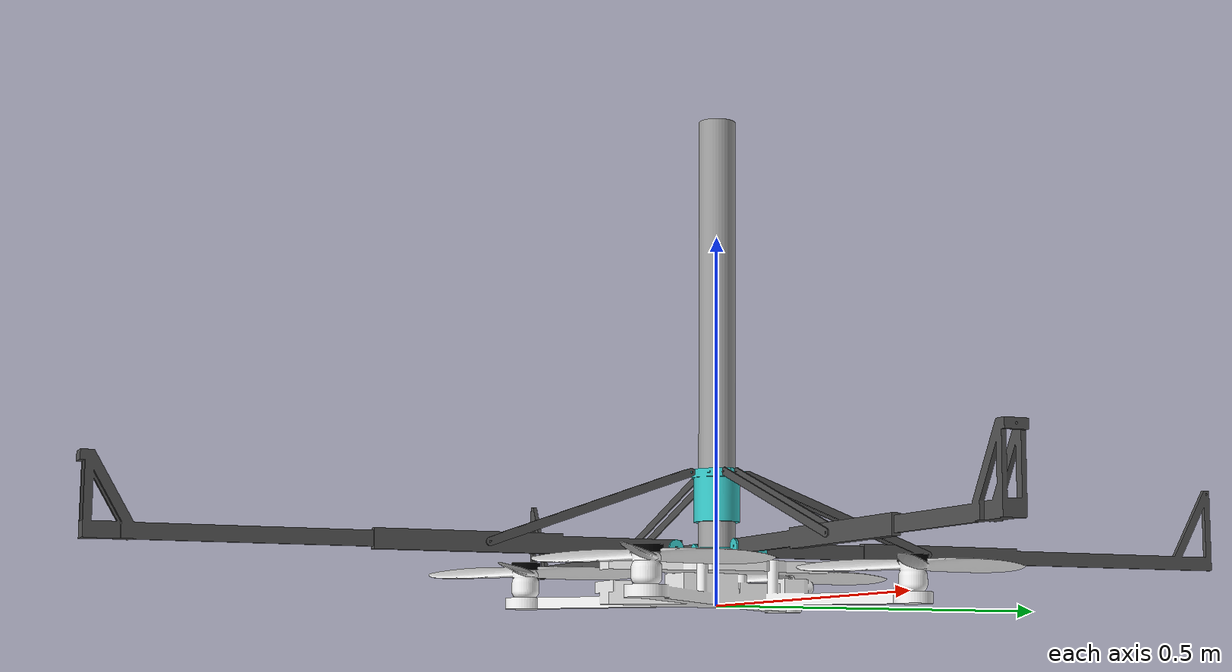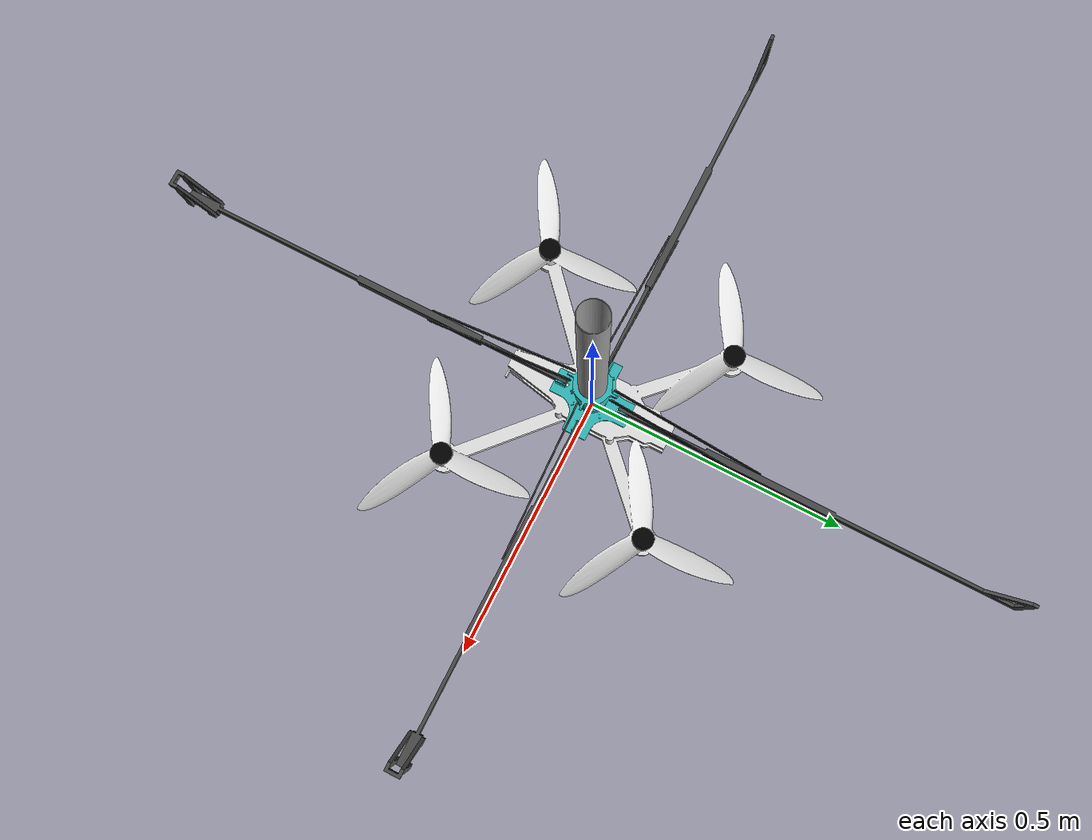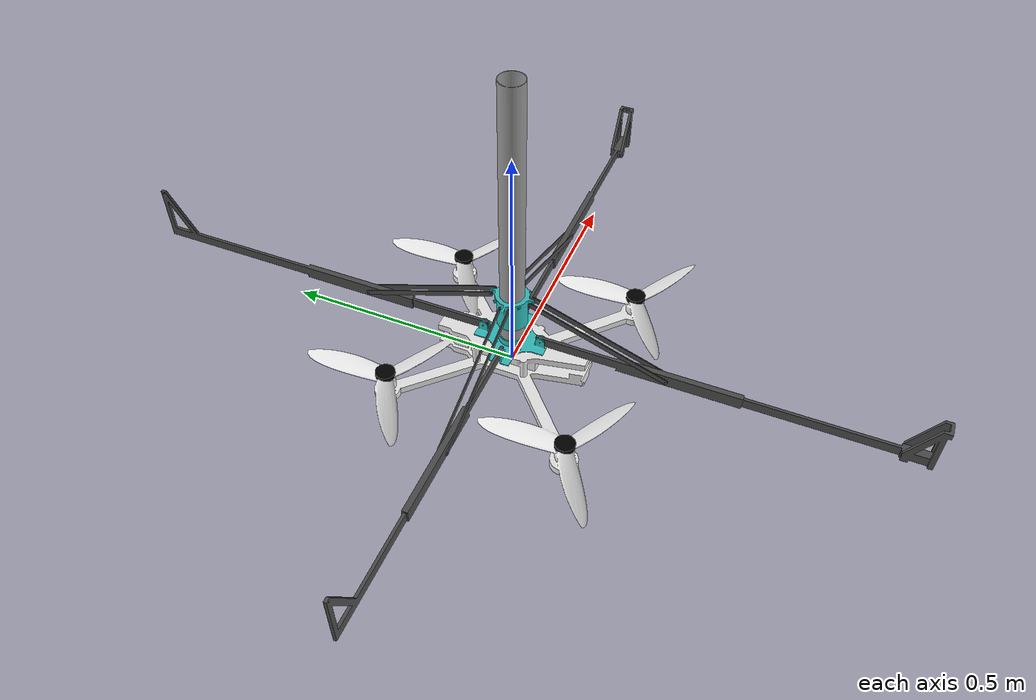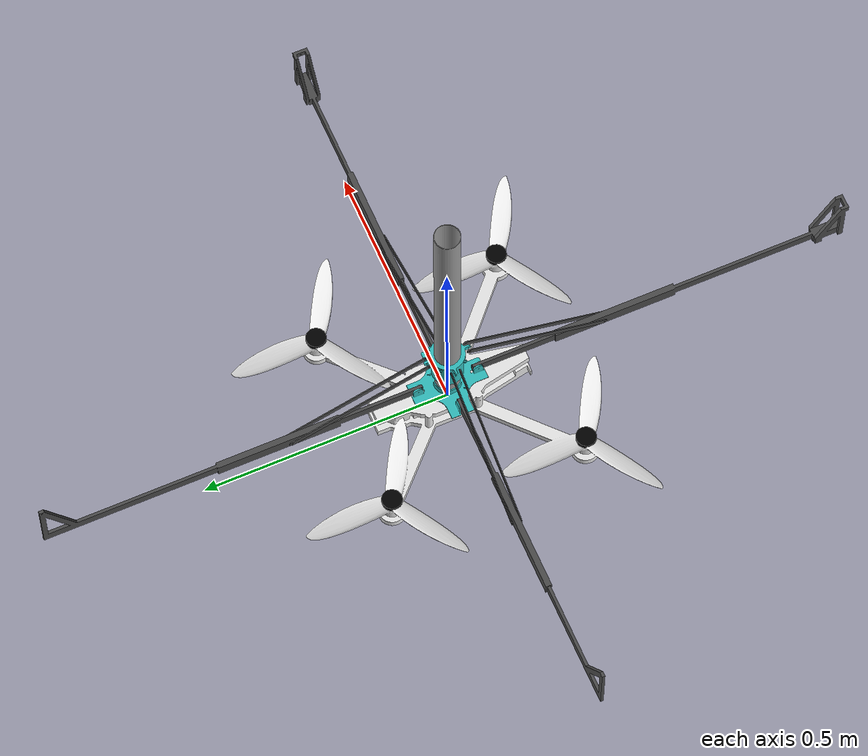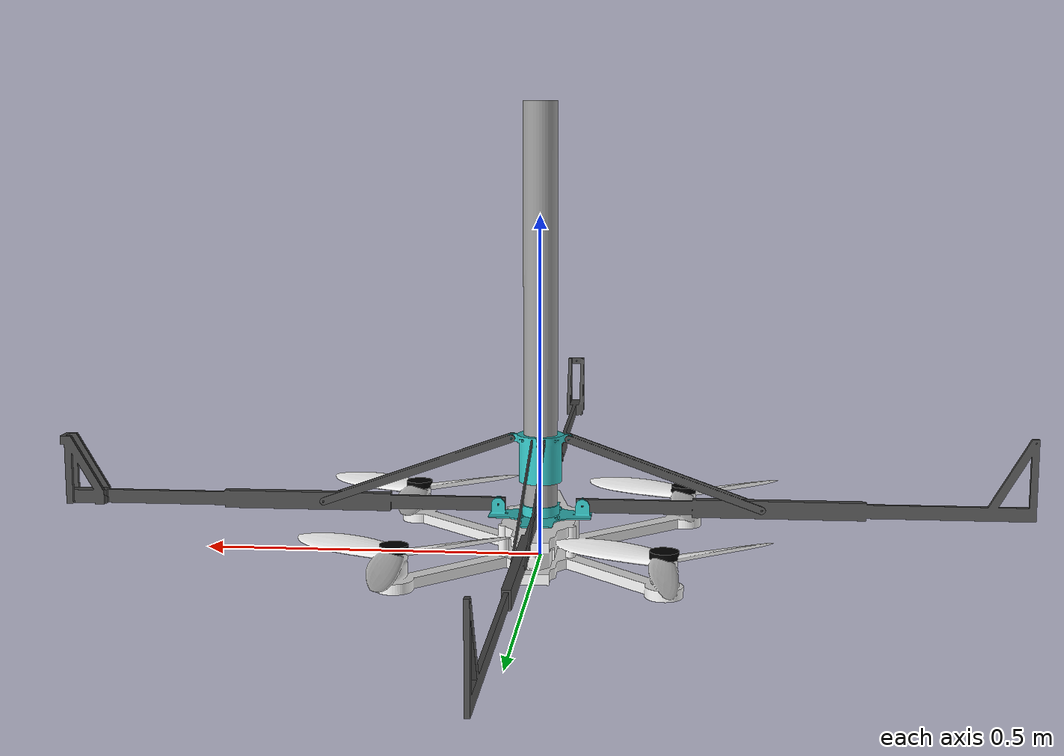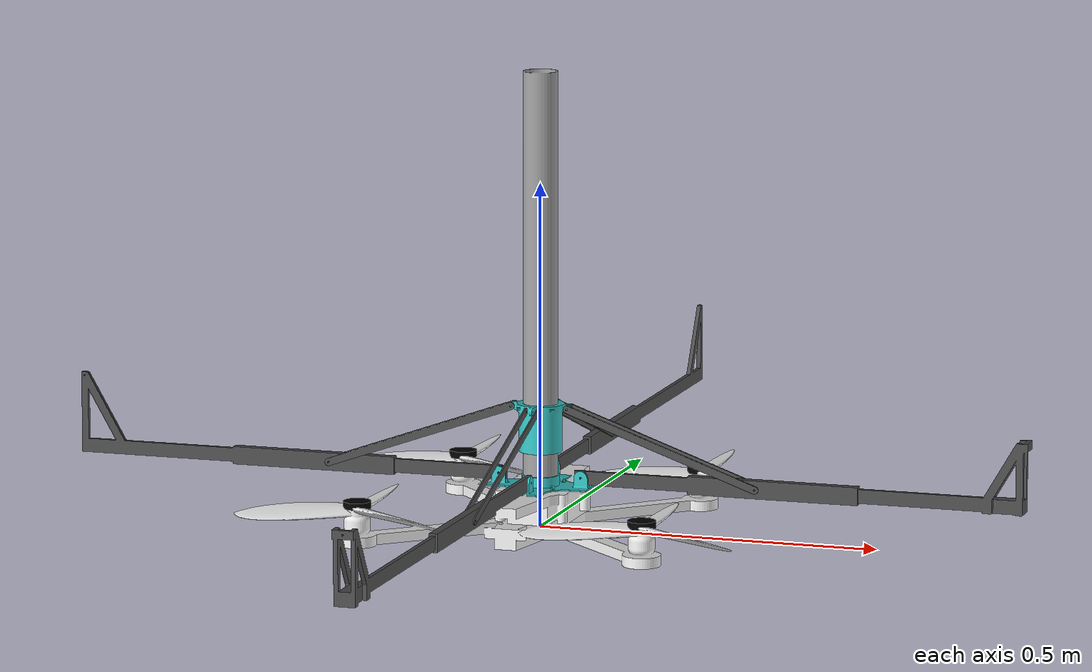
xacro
<?xml version="1.0"?>
<robot xmlns:xacro="http://ros.org/wiki/xacro" name="drone">

  <!-- Gazebo global settings -->
  <gazebo>
    <preserveFixedJoint>true</preserveFixedJoint>
  </gazebo>
  <gazebo>
    <plugin name="joint_state_publisher" filename="libgazebo_ros_joint_state_publisher.so"/>
  </gazebo>

  <!-- Define black material to avoid warnings -->
  <material name="black">
    <color rgba="0.0 0.0 0.0 1.0"/>
  </material>

  <!-- Include macros -->
  <xacro:include filename="$(find drone_description)/urdf/macros.urdf.xacro"/>

  <!-- Root and base structure -->
  <link name="drone_root">
    <inertial>
      <mass value="0.3"/>
      <origin xyz="0 0 0"/>
      <inertia ixx="0.005" iyy="0.005" izz="0.005" ixy="0" ixz="0" iyz="0"/>
    </inertial>
  </link>

  <link name="drone_dummy_link">
    <inertial>
      <mass value="0.01"/>
      <origin xyz="0 0 0"/>
      <inertia ixx="1e-6" iyy="1e-6" izz="1e-6" ixy="0" ixz="0" iyz="0"/>
    </inertial>
  </link>

  <joint name="drone_dummy_joint" type="fixed">
    <parent link="drone_root"/>
    <child link="drone_dummy_link"/>
  </joint>

  <joint name="drone_root_joint" type="fixed">
    <parent link="drone_dummy_link"/>
    <child link="base_link"/>
  </joint>

  <link name="base_link">
    <inertial>
      <mass value="2.3"/>
      <origin xyz="0 0 0"/>
      <inertia ixx="0.083206" iyy="0.184061" izz="0.102305" ixy="0.0" ixz="0.0" iyz="0.0"/>
    </inertial>
    <visual>
      <geometry>
        <mesh filename="package://drone_description/meshes/drone.dae" scale="1 1 1"/>
      </geometry>
    </visual>
    <collision>
      <geometry>
        <mesh filename="package://drone_description/meshes/drone.dae" scale="1 1 1"/>
      </geometry>
    </collision>
  </link>

  <!-- IMU Sensor -->
  <gazebo reference="base_link">
    <sensor type="imu" name="imu_sensor">
      <update_rate>100.0</update_rate>
      <always_on>true</always_on>
      <visualize>true</visualize>
      <imu>
        <angular_velocity>
          <x><noise type="gaussian"><mean>0.0</mean><stddev>0.01</stddev></noise></x>
          <y><noise type="gaussian"><mean>0.0</mean><stddev>0.01</stddev></noise></y>
          <z><noise type="gaussian"><mean>0.0</mean><stddev>0.01</stddev></noise></z>
        </angular_velocity>
        <linear_acceleration>
          <x><noise type="gaussian"><mean>0.0</mean><stddev>0.01</stddev></noise></x>
          <y><noise type="gaussian"><mean>0.0</mean><stddev>0.01</stddev></noise></y>
          <z><noise type="gaussian"><mean>0.0</mean><stddev>0.01</stddev></noise></z>
        </linear_acceleration>
      </imu>
      <plugin name="imu_plugin" filename="libgazebo_ros_imu_sensor.so">
        <topic>/imu_plugin/out</topic>
        <frame_name>base_link</frame_name>
      </plugin>
    </sensor>
  </gazebo>

  <!-- Base -->
  <xacro:mechanism_link name="base" mesh="base.dae" mass="0.3" ixx="0.001042" iyy="0.001875" izz="0.001042"/>
  <joint name="base_to_drone" type="fixed">
    <parent link="base_link"/>
    <child link="base"/>
  </joint>

  <!-- Column -->
  <xacro:mechanism_link name="column" mesh="column.dae" mass="0.4" ixx="0.021286" iyy="0.000292" izz="0.021286"/>
  <joint name="base_to_column" type="fixed">
    <parent link="base"/>
    <child link="column"/>
  </joint>

  <!-- Slider -->
  <link name="slider">
    <visual><geometry><mesh filename="package://drone_description/meshes/slider.dae"/></geometry></visual>
    <collision><geometry><mesh filename="package://drone_description/meshes/slider.dae"/></geometry></collision>
    <inertial>
      <mass value="0.5"/>
      <origin xyz="0 0 0"/>
      <inertia ixx="0.000247" iyy="0.000327" izz="0.000247" ixy="0.0" ixz="0.0" iyz="0.0"/>
    </inertial>
  </link>
  <joint name="column_to_slider" type="prismatic">
    <parent link="column"/>
    <child link="slider"/>
    <axis xyz="0 0 1"/>
    <limit effort="100" velocity="1.0" lower="0.0" upper="0.2"/>
    <dynamics damping="5.0" friction="0.5"/>
  </joint>

  <gazebo>
    <plugin name="joint_effort_plugin_column_to_slider" filename="libjoint_effort_plugin.so">
      <joint_name>column_to_slider</joint_name>
      <topic_name>/column_to_slider/effort_command</topic_name>
    </plugin>
  </gazebo>

  <!-- Arm + Brace macros -->
  <xacro:arm_brace_pair prefix="ab1_" index="1" parent="slider"/>
  <xacro:arm_brace_pair prefix="ab2_" index="2" parent="slider"/>
  <xacro:arm_brace_pair prefix="ab3_" index="3" parent="slider"/>
  <xacro:arm_brace_pair prefix="ab4_" index="4" parent="slider"/>

  <!-- Plugins for each actuated joint -->
  <gazebo reference="ab1__brace_1">
    <plugin name="effort_ab1" filename="libjoint_effort_plugin.so">
      <joint_name>ab1__slider_to_brace_1_joint</joint_name>
      <topic_name>/ab1__slider_to_brace_1_joint/effort_command</topic_name>
    </plugin>
  </gazebo>
  <gazebo reference="ab2__brace_2">
    <plugin name="effort_ab2" filename="libjoint_effort_plugin.so">
      <joint_name>ab2__slider_to_brace_2_joint</joint_name>
      <topic_name>/ab2__slider_to_brace_2_joint/effort_command</topic_name>
    </plugin>
  </gazebo>
  <gazebo reference="ab3__brace_3">
    <plugin name="effort_ab3" filename="libjoint_effort_plugin.so">
      <joint_name>ab3__slider_to_brace_3_joint</joint_name>
      <topic_name>/ab3__slider_to_brace_3_joint/effort_command</topic_name>
    </plugin>
  </gazebo>
  <gazebo reference="ab4__brace_4">
    <plugin name="effort_ab4" filename="libjoint_effort_plugin.so">
      <joint_name>ab4__slider_to_brace_4_joint</joint_name>
      <topic_name>/ab4__slider_to_brace_4_joint/effort_command</topic_name>
    </plugin>
  </gazebo>
  <gazebo reference="ab1__arm_1">
    <plugin name="effort_arm1" filename="libjoint_effort_plugin.so">
      <joint_name>ab1__brace_1_to_arm_1_dummy_joint</joint_name>
      <topic_name>/ab1__brace_1_to_arm_1_dummy_joint/effort_command</topic_name>
    </plugin>
  </gazebo>
  <gazebo reference="ab2__arm_2">
    <plugin name="effort_arm2" filename="libjoint_effort_plugin.so">
      <joint_name>ab2__brace_2_to_arm_2_dummy_joint</joint_name>
      <topic_name>/ab2__brace_2_to_arm_2_dummy_joint/effort_command</topic_name>
    </plugin>
  </gazebo>
  <gazebo reference="ab3__arm_3">
    <plugin name="effort_arm3" filename="libjoint_effort_plugin.so">
      <joint_name>ab3__brace_3_to_arm_3_dummy_joint</joint_name>
      <topic_name>/ab3__brace_3_to_arm_3_dummy_joint/effort_command</topic_name>
    </plugin>
  </gazebo>
  <gazebo reference="ab4__arm_4">
    <plugin name="effort_arm4" filename="libjoint_effort_plugin.so">
      <joint_name>ab4__brace_4_to_arm_4_dummy_joint</joint_name>
      <topic_name>/ab4__brace_4_to_arm_4_dummy_joint/effort_command</topic_name>
    </plugin>
  </gazebo>

  <!-- ROTOR MACRO -->
  <!-- Rotor Links and Joints -->
  <xacro:macro name="rotor_link" params="index x y z direction">
    <link name="rotor_${index}">
      <inertial>
        <mass value="0.01"/>
        <origin xyz="0 0 0"/>
        <inertia ixx="1e-6" iyy="1e-6" izz="1e-6" ixy="0" ixz="0" iyz="0"/>
      </inertial>
      <visual>
        <geometry>
          <cylinder radius="0.02" length="0.01"/>
        </geometry>
        <material name="black"/>
      </visual>
      <collision>
        <geometry>
          <cylinder radius="0.02" length="0.01"/>
        </geometry>
      </collision>
    </link>

    <joint name="rotor${index}_joint" type="continuous">
      <parent link="base_link"/>
      <child link="rotor_${index}"/>
      <origin xyz="${x} ${y} ${z}" rpy="0 0 0"/>
      <axis xyz="0 0 1"/>
      <limit effort="5.0" velocity="100.0"/>
      <dynamics damping="0.01" friction="0.01"/>
    </joint>

    <!-- Apply damping -->
    <gazebo reference="rotor_${index}">
      <damping>0.01</damping>
    </gazebo>
  </xacro:macro>

  <!-- Custom Thrust Plugin Configuration -->
  <gazebo>
    <plugin name="thrust_plugin" filename="libthrust_plugin.so">
      <rotors>
        <linkName>rotor_1</linkName>
        <topicName>/rotor1/thrust</topicName>
        <thrustCoefficient>3.22e-6</thrustCoefficient>
        <torqueCoefficient>9.6e-9</torqueCoefficient>
        <direction>-1.0</direction>
        <maxForce>30</maxForce>
      </rotors>
      <rotors>
        <linkName>rotor_2</linkName>
        <topicName>/rotor2/thrust</topicName>
        <thrustCoefficient>3.22e-6</thrustCoefficient>
        <torqueCoefficient>9.6e-9</torqueCoefficient>
        <direction>1.0</direction>
        <maxForce>30</maxForce>
      </rotors>
      <rotors>
        <linkName>rotor_3</linkName>
        <topicName>/rotor3/thrust</topicName>
        <thrustCoefficient>3.22e-6</thrustCoefficient>
        <torqueCoefficient>9.6e-9</torqueCoefficient>
        <direction>-1.0</direction>
        <maxForce>30</maxForce>
      </rotors>
      <rotors>
        <linkName>rotor_4</linkName>
        <topicName>/rotor4/thrust</topicName>
        <thrustCoefficient>3.22e-6</thrustCoefficient>
        <torqueCoefficient>9.6e-9</torqueCoefficient>
        <direction>1.0</direction>
        <maxForce>30</maxForce>
      </rotors>
    </plugin>
  </gazebo>

  <!-- Instantiate Rotors -->
  <!-- Front-Right (CW) -->
  <xacro:rotor_link index="1" x="0.21091"  y="-0.19391" z="0.0585" direction="-5.0"/>
  <!-- Front-Left  (CCW) -->
  <xacro:rotor_link index="2" x="-0.21059" y="-0.19391" z="0.0585" direction="5.0"/>
  <!-- Back-Left   (CW) -->
  <xacro:rotor_link index="3" x="-0.18359" y="0.19309"  z="0.0585" direction="-5.0"/>
  <!-- Back-Right  (CCW) -->
  <xacro:rotor_link index="4" x="0.18391"  y="0.19309"  z="0.0585" direction="5.0"/>

  <!-- Gazebo plugins -->
  <gazebo reference="base_link"><damping>0.1</damping></gazebo>
  <gazebo reference="drone_root"><damping>0.05</damping></gazebo>

  <!-- Arms with gravity and damping -->
  <gazebo reference="ab1__arm_1"><gravity>true</gravity><damping>0.1</damping></gazebo>
  <gazebo reference="ab2__arm_2"><gravity>true</gravity><damping>0.1</damping></gazebo>
  <gazebo reference="ab3__arm_3"><gravity>true</gravity><damping>0.1</damping></gazebo>
  <gazebo reference="ab4__arm_4"><gravity>true</gravity><damping>0.1</damping></gazebo>

  <!-- Visual materials -->
  <gazebo reference="base_link"><material>Gazebo/White</material></gazebo>
  <gazebo reference="base"><material>Gazebo/Turquoise</material></gazebo>
  <gazebo reference="column"><material>Gazebo/Grey</material></gazebo>
  <gazebo reference="slider"><material>Gazebo/Turquoise</material></gazebo>

</robot>

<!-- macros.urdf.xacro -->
<robot xmlns:xacro="http://www.ros.org/wiki/xacro">

  <!-- Generic link definition -->
  <xacro:macro name="mechanism_link" params="name mesh mass ixx iyy izz">
    <link name="${name}">
      <visual>
        <geometry>
          <mesh filename="package://drone_description/meshes/${mesh}" scale="1 1 1"/>
        </geometry>
      </visual>
      <collision>
        <geometry>
          <mesh filename="package://drone_description/meshes/${mesh}" scale="1 1 1"/>
        </geometry>
      </collision>
      <inertial>
        <origin xyz="0 0 0" rpy="0 0 0"/>
        <mass value="${mass}"/>
        <inertia ixx="${ixx}" iyy="${iyy}" izz="${izz}" ixy="0.0" ixz="0.0" iyz="0.0"/>
      </inertial>
    </link>
  </xacro:macro>

  <xacro:macro name="arm_brace_pair" params="prefix index parent">
    <!-- Arm link -->
    <link name="${prefix}_arm_${index}">
      <visual>
        <geometry>
          <mesh filename="package://drone_description/meshes/arm_${index}.dae"/>
        </geometry>
      </visual>
      <collision>
        <geometry>
          <mesh filename="package://drone_description/meshes/arm_${index}.dae"/>
        </geometry>
      </collision>
      <inertial>
        <origin xyz="0 0 0" rpy="0 0 0"/>
        <mass value="0.2"/>
        <inertia ixx="0.00012" iyy="0.00012" izz="0.00004" ixy="0.0" ixz="0.0" iyz="0.0"/>
      </inertial>
    </link>

    <gazebo reference="${prefix}_arm_${index}"><material>Gazebo/DarkGrey</material></gazebo>

    <link name="${prefix}_arm_${index}_dummy"/>

    <!-- Dummy joint to allow reuse of braces across arms -->
    <joint name="${prefix}arm_${index}_dummy_to_arm_${index}_joint" type="fixed">
      <parent link="${prefix}_arm_${index}_dummy"/>
      <child link="${prefix}_arm_${index}"/>
      <origin xyz="0 0 0" rpy="0 0 0"/>
    </joint>

    <!-- Brace link -->
    <link name="${prefix}_brace_${index}">
      <visual>
        <geometry>
          <mesh filename="package://drone_description/meshes/brace_${index}.dae"/>
        </geometry>
      </visual>
      <collision>
        <geometry>
          <mesh filename="package://drone_description/meshes/brace_${index}.dae"/>
        </geometry>
      </collision>
      <inertial>
        <origin xyz="0 0 0" rpy="0 0 0"/>
        <mass value="0.15"/>
        <inertia ixx="0.00007" iyy="0.00007" izz="0.00003" ixy="0.0" ixz="0.0" iyz="0.0"/>
      </inertial>
    </link>

    <gazebo reference="${prefix}_brace_${index}"><material>Gazebo/DarkGrey</material></gazebo>

    <!-- Revolute joint between slider and brace -->
    <joint name="${prefix}slider_to_brace_${index}_joint" type="revolute">
      <parent link="${parent}"/>
      <child link="${prefix}_brace_${index}"/>
      <origin xyz="0 0 0" rpy="0 0 0"/>
      <axis xyz="0 0 1"/>
      <limit lower="-1.57" upper="1.57" effort="1.0" velocity="1.0"/>
      <dynamics damping="0.01" friction="0.02"/>
    </joint>

    <!-- Revolute joint between brace and dummy arm link -->
    <joint name="${prefix}brace_${index}_to_arm_${index}_dummy_joint" type="revolute">
      <parent link="${prefix}_brace_${index}"/>
      <child link="${prefix}_arm_${index}_dummy"/>
      <origin xyz="0 0 0" rpy="0 0 0"/>
      <axis xyz="0 0 1"/>
      <limit lower="-1.57" upper="1.57" effort="1.0" velocity="1.0"/>
      <dynamics damping="0.01" friction="0.02"/>
    </joint>

  </xacro:macro>

</robot>
